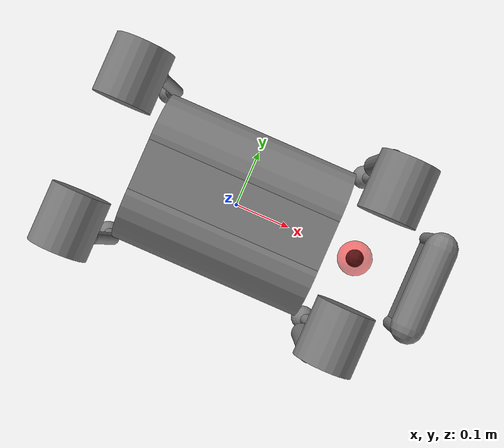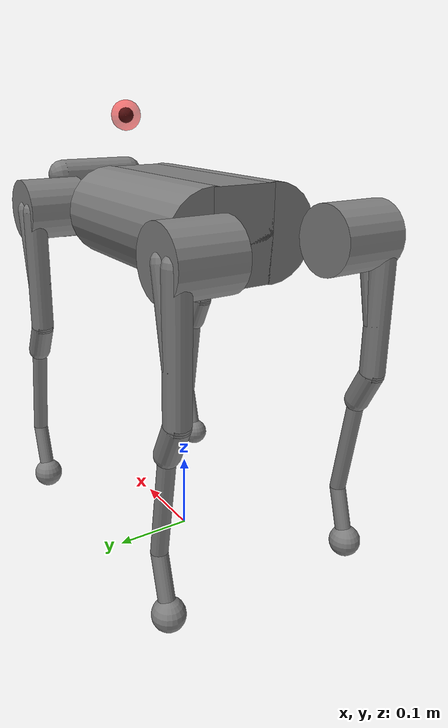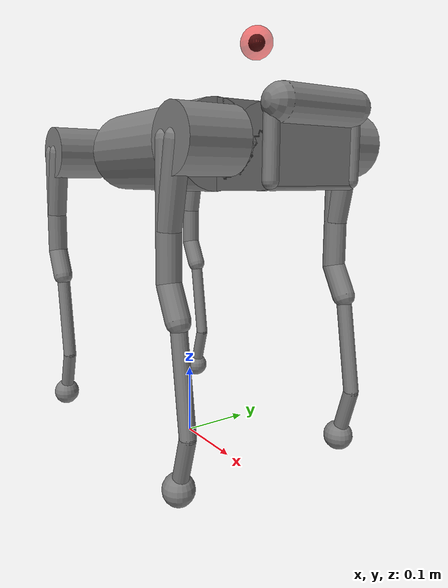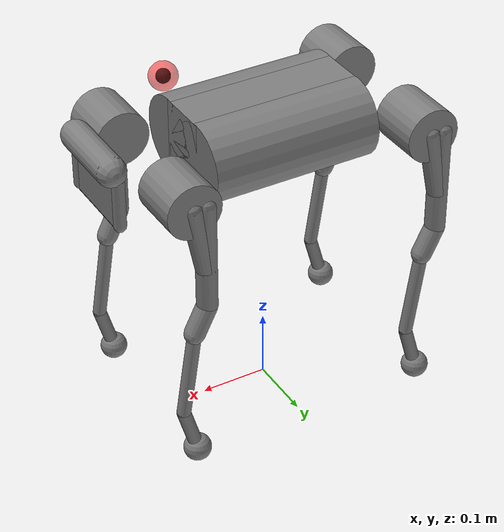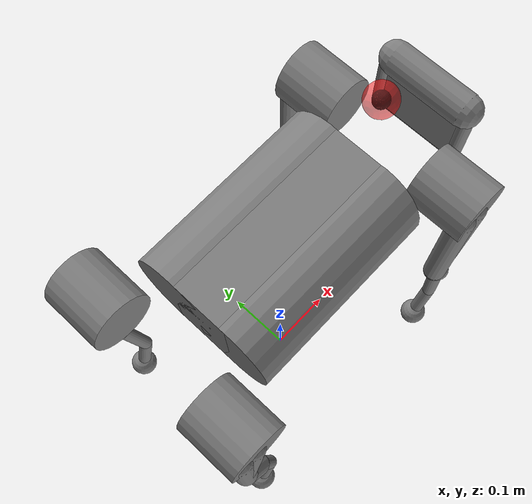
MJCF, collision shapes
<mujoco model="a1">
  <compiler angle="radian" meshdir="assets" autolimits="true"/>

  <option cone="elliptic" impratio="100"/>

  <default>
    <default class="a1">
      <geom friction="0.6" margin="0.001"/>
      <joint axis="0 1 0" damping="2" armature="0.01" frictionloss="0.2"/>
      <position kp="20" kv="0.5" forcerange="-33.5 33.5"/>
      <default class="abduction">
        <joint axis="1 0 0" damping="1" range="-0.802851 0.802851"/>
        <position ctrlrange="-0.802851 0.802851"/>
      </default>
      <default class="hip">
        <joint range="-1.0472 4.18879"/>
        <position ctrlrange="-1.0472 4.18879"/>
      </default>
      <default class="knee">
        <joint range="-2.69653 -0.916298"/>
        <position ctrlrange="-2.69653 -0.916298"/>
      </default>
      <default class="visual">
        <geom type="mesh" contype="0" conaffinity="0" group="2" material="dark"/>
      </default>
      <default class="collision">
        <geom group="3" type="capsule"/>
        <default class="hip_left">
          <geom size="0.04 0.04" quat="1 1 0 0" type="cylinder" pos="0 0.055 0"/>
        </default>
        <default class="hip_right">
          <geom size="0.04 0.04" quat="1 1 0 0" type="cylinder" pos="0 -0.055 0"/>
        </default>
        <default class="thigh1">
          <geom size="0.015" fromto="-0.02 0 0 -0.02 0 -0.16"/>
        </default>
        <default class="thigh2">
          <geom size="0.015" fromto="0 0 0 -0.02 0 -0.1"/>
        </default>
        <default class="thigh3">
          <geom size="0.015" fromto="-0.02 0 -0.16 0 0 -0.2"/>
        </default>
        <default class="calf1">
          <geom size="0.01" fromto="0 0 0 0.02 0 -0.13"/>
        </default>
        <default class="calf2">
          <geom size="0.01" fromto="0.02 0 -0.13 0 0 -0.2"/>
        </default>
        <default class="foot">
          <geom type="sphere" size="0.02" pos="0 0 -0.2" priority="1" solimp="0.015 1 0.02" condim="6"
            friction="0.8 0.02 0.01"/>
        </default>
      </default>
    </default>
  </default>

  <asset>
    <material name="dark" specular="0" shininess="0.25" rgba="0.2 0.2 0.2 1"/>
    <material name="carbonfibre" specular="0" shininess="0.25" rgba="0.2 0.2 0.2 1"/>

    <mesh class="a1" file="calf.obj"/>
    <mesh class="a1" file="hip.obj"/>
    <mesh class="a1" file="thigh.obj"/>
    <mesh class="a1" file="thigh_mirror.obj"/>
    <mesh class="a1" file="trunk.obj"/>
  </asset>

  <worldbody>
    <light name="spotlight" mode="targetbodycom" target="trunk" pos="0 -1 2"/>
    <body name="trunk" pos="0 0 0.43" childclass="a1">
      <camera name="tracking" pos="0.846 -1.3 0.316" xyaxes="0.866 0.500 0.000 -0.171 0.296 0.940" mode="trackcom"/>
      <site name="head" pos="0.3 0 0" rgba="1 0 0 1" size="0.02" group="5"/>
      <site name="imu" pos="0 0 0" group="5"/>
      <freejoint name="floating_base_joint"/>
      <inertial mass="4.713" pos="0 0.0041 -0.0005"
        fullinertia="0.0158533 0.0377999 0.0456542 -3.66e-05 -6.11e-05 -2.75e-05"/>
      <geom class="visual" mesh="trunk" material="carbonfibre"/>
      <geom name="trunk_collision" class="collision" size="0.125 0.04 0.057" type="box"/>
      <geom name="trunk_collision_right" class="collision" quat="1 0 1 0" pos="0 -0.04 0" size="0.058 0.125" type="cylinder"/>
      <geom name="trunk_collision_left" class="collision" quat="1 0 1 0" pos="0 +0.04 0" size="0.058 0.125" type="cylinder"/>
      <geom name="head_collision_bar" class="collision" pos="0.25 0 0" size="0.005 0.06 0.05" type="box"/>
      <geom name="head_collision_left" class="collision" pos="0.25 0.06 -0.01" size="0.009 0.035"/>
      <geom name="head_collision_right" class="collision" pos="0.25 -0.06 -0.01" size="0.009 0.035"/>
      <geom name="chin_collision" class="collision" pos="0.25 0 -0.05" size="0.005 0.06" quat="1 1 0 0"/>
      <geom name="head_collision" class="collision" pos="0.255 0 0.0355" size="0.021 0.052" quat="1 1 0 0"/>

      <!-- Lidar body on top of trunk -->
      <body name="lidar_body" pos="0.15 0 0.12" euler="0 1.5708 0">
        <site name="lidar_origin" pos="0 0 0" size="0.02" type="sphere" rgba="1 0 0 0.5" />
        <!-- 40 evenly spaced lidar beams covering full 360 degrees (9 degrees apart) -->
        <site name="lidar_beam_0" pos="0 0 0" euler="0.000000 0 0" size="0.01" />
        <site name="lidar_beam_1" pos="0 0 0" euler="0.157080 0 0" size="0.01" />
        <site name="lidar_beam_2" pos="0 0 0" euler="0.314159 0 0" size="0.01" />
        <site name="lidar_beam_3" pos="0 0 0" euler="0.471239 0 0" size="0.01" />
        <site name="lidar_beam_4" pos="0 0 0" euler="0.628319 0 0" size="0.01" />
        <site name="lidar_beam_5" pos="0 0 0" euler="0.785398 0 0" size="0.01" />
        <site name="lidar_beam_6" pos="0 0 0" euler="0.942478 0 0" size="0.01" />
        <site name="lidar_beam_7" pos="0 0 0" euler="1.099557 0 0" size="0.01" />
        <site name="lidar_beam_8" pos="0 0 0" euler="1.256637 0 0" size="0.01" />
        <site name="lidar_beam_9" pos="0 0 0" euler="1.413717 0 0" size="0.01" />
        <site name="lidar_beam_10" pos="0 0 0" euler="1.570796 0 0" size="0.01" />
        <site name="lidar_beam_11" pos="0 0 0" euler="1.727876 0 0" size="0.01" />
        <site name="lidar_beam_12" pos="0 0 0" euler="1.884956 0 0" size="0.01" />
        <site name="lidar_beam_13" pos="0 0 0" euler="2.042035 0 0" size="0.01" />
        <site name="lidar_beam_14" pos="0 0 0" euler="2.199115 0 0" size="0.01" />
        <site name="lidar_beam_15" pos="0 0 0" euler="2.356194 0 0" size="0.01" />
        <site name="lidar_beam_16" pos="0 0 0" euler="2.513274 0 0" size="0.01" />
        <site name="lidar_beam_17" pos="0 0 0" euler="2.670354 0 0" size="0.01" />
        <site name="lidar_beam_18" pos="0 0 0" euler="2.827433 0 0" size="0.01" />
        <site name="lidar_beam_19" pos="0 0 0" euler="2.984513 0 0" size="0.01" />
        <site name="lidar_beam_20" pos="0 0 0" euler="3.141593 0 0" size="0.01" />
        <site name="lidar_beam_21" pos="0 0 0" euler="3.298672 0 0" size="0.01" />
        <site name="lidar_beam_22" pos="0 0 0" euler="3.455752 0 0" size="0.01" />
        <site name="lidar_beam_23" pos="0 0 0" euler="3.612832 0 0" size="0.01" />
        <site name="lidar_beam_24" pos="0 0 0" euler="3.769911 0 0" size="0.01" />
        <site name="lidar_beam_25" pos="0 0 0" euler="3.926991 0 0" size="0.01" />
        <site name="lidar_beam_26" pos="0 0 0" euler="4.084070 0 0" size="0.01" />
        <site name="lidar_beam_27" pos="0 0 0" euler="4.241150 0 0" size="0.01" />
        <site name="lidar_beam_28" pos="0 0 0" euler="4.398230 0 0" size="0.01" />
        <site name="lidar_beam_29" pos="0 0 0" euler="4.555309 0 0" size="0.01" />
        <site name="lidar_beam_30" pos="0 0 0" euler="4.712389 0 0" size="0.01" />
        <site name="lidar_beam_31" pos="0 0 0" euler="4.869469 0 0" size="0.01" />
        <site name="lidar_beam_32" pos="0 0 0" euler="5.026548 0 0" size="0.01" />
        <site name="lidar_beam_33" pos="0 0 0" euler="5.183628 0 0" size="0.01" />
        <site name="lidar_beam_34" pos="0 0 0" euler="5.340708 0 0" size="0.01" />
        <site name="lidar_beam_35" pos="0 0 0" euler="5.497787 0 0" size="0.01" />
        <site name="lidar_beam_36" pos="0 0 0" euler="5.654867 0 0" size="0.01" />
        <site name="lidar_beam_37" pos="0 0 0" euler="5.811946 0 0" size="0.01" />
        <site name="lidar_beam_38" pos="0 0 0" euler="5.969026 0 0" size="0.01" />
        <site name="lidar_beam_39" pos="0 0 0" euler="6.126106 0 0" size="0.01" />
      </body>

      <body name="FR_hip" pos="0.183 -0.047 0">
        <inertial mass="0.696" pos="-0.003311 -0.000635 3.1e-05" quat="0.507528 0.506268 0.491507 0.494499"
          diaginertia="0.000807752 0.00055293 0.000468983"/>
        <joint class="abduction" name="FR_hip_joint"/>
        <geom class="visual" mesh="hip" quat="0 1 0 0"/>
        <geom name="FR_hip_collision" class="hip_right"/>
        <body name="FR_thigh" pos="0 -0.08505 0">
          <inertial mass="1.013" pos="-0.003237 0.022327 -0.027326" quat="0.999125 -0.00256393 -0.0409531 -0.00806091"
            diaginertia="0.00555739 0.00513936 0.00133944"/>
          <joint class="hip" name="FR_thigh_joint"/>
          <geom class="visual" mesh="thigh_mirror"/>
          <geom name="FR_thigh_collision1" class="thigh1"/>
          <geom name="FR_thigh_collision2" class="thigh2"/>
          <geom name="FR_thigh_collision3" class="thigh3"/>
          <body name="FR_calf" pos="0 0 -0.2">
            <inertial mass="0.226" pos="0.00472659 0 -0.131975" quat="0.706886 0.017653 0.017653 0.706886"
              diaginertia="0.00340344 0.00339393 3.54834e-05"/>
            <joint class="knee" name="FR_calf_joint"/>
            <geom class="visual" mesh="calf"/>
            <geom name="FR_calf_collision1" class="calf1"/>
            <geom name="FR_calf_collision2" class="calf2"/>
            <geom name="FR_foot_collision" class="foot"/>
            <site name="FR" pos="0 0 -0.2" type="sphere" size="0.02" group="5"/>
          </body>
        </body>
      </body>
      <body name="FL_hip" pos="0.183 0.047 0">
        <inertial mass="0.696" pos="-0.003311 0.000635 3.1e-05" quat="0.494499 0.491507 0.506268 0.507528"
          diaginertia="0.000807752 0.00055293 0.000468983"/>
        <joint class="abduction" name="FL_hip_joint"/>
        <geom class="visual" mesh="hip"/>
        <geom name="FL_hip_collision" class="hip_left"/>
        <body name="FL_thigh" pos="0 0.08505 0">
          <inertial mass="1.013" pos="-0.003237 -0.022327 -0.027326" quat="0.999125 0.00256393 -0.0409531 0.00806091"
            diaginertia="0.00555739 0.00513936 0.00133944"/>
          <joint class="hip" name="FL_thigh_joint"/>
          <geom class="visual" mesh="thigh"/>
          <geom name="FL_thigh_collision1" class="thigh1"/>
          <geom name="FL_thigh_collision2" class="thigh2"/>
          <geom name="FL_thigh_collision3" class="thigh3"/>
          <body name="FL_calf" pos="0 0 -0.2">
            <inertial mass="0.226" pos="0.00472659 0 -0.131975" quat="0.706886 0.017653 0.017653 0.706886"
              diaginertia="0.00340344 0.00339393 3.54834e-05"/>
            <joint class="knee" name="FL_calf_joint"/>
            <geom class="visual" mesh="calf"/>
            <geom name="FL_calf_collision1" class="calf1"/>
            <geom name="FL_calf_collision2" class="calf2"/>
            <geom name="FL_foot_collision" class="foot"/>
            <site name="FL" pos="0 0 -0.2" type="sphere" size="0.02" group="5"/>
          </body>
        </body>
      </body>
      <body name="RR_hip" pos="-0.183 -0.047 0">
        <inertial mass="0.696" pos="0.003311 -0.000635 3.1e-05" quat="0.491507 0.494499 0.507528 0.506268"
          diaginertia="0.000807752 0.00055293 0.000468983"/>
        <joint class="abduction" name="RR_hip_joint"/>
        <geom class="visual" quat="0 0 0 -1" mesh="hip"/>
        <geom name="RR_hip_collision" class="hip_right"/>
        <body name="RR_thigh" pos="0 -0.08505 0">
          <inertial mass="1.013" pos="-0.003237 0.022327 -0.027326" quat="0.999125 -0.00256393 -0.0409531 -0.00806091"
            diaginertia="0.00555739 0.00513936 0.00133944"/>
          <joint class="hip" name="RR_thigh_joint"/>
          <geom class="visual" mesh="thigh_mirror"/>
          <geom name="RR_thigh_collision1" class="thigh1"/>
          <geom name="RR_thigh_collision2" class="thigh2"/>
          <geom name="RR_thigh_collision3" class="thigh3"/>
          <body name="RR_calf" pos="0 0 -0.2">
            <inertial mass="0.226" pos="0.00472659 0 -0.131975" quat="0.706886 0.017653 0.017653 0.706886"
              diaginertia="0.00340344 0.00339393 3.54834e-05"/>
            <joint class="knee" name="RR_calf_joint"/>
            <geom class="visual" mesh="calf"/>
            <geom name="RR_calf_collision1" class="calf1"/>
            <geom name="RR_calf_collision2" class="calf2"/>
            <geom name="RR_foot_collision" class="foot"/>
            <site name="RR" pos="0 0 -0.2" type="sphere" size="0.02" group="5"/>
          </body>
        </body>
      </body>
      <body name="RL_hip" pos="-0.183 0.047 0">
        <inertial mass="0.696" pos="0.003311 0.000635 3.1e-05" quat="0.506268 0.507528 0.494499 0.491507"
          diaginertia="0.000807752 0.00055293 0.000468983"/>
        <joint class="abduction" name="RL_hip_joint"/>
        <geom class="visual" quat="0 0 1 0" mesh="hip"/>
        <geom name="RL_hip_collision" class="hip_left"/>
        <body name="RL_thigh" pos="0 0.08505 0">
          <inertial mass="1.013" pos="-0.003237 -0.022327 -0.027326" quat="0.999125 0.00256393 -0.0409531 0.00806091"
            diaginertia="0.00555739 0.00513936 0.00133944"/>
          <joint class="hip" name="RL_thigh_joint"/>
          <geom class="visual" mesh="thigh"/>
          <geom name="RL_thigh_collision1" class="thigh1"/>
          <geom name="RL_thigh_collision2" class="thigh2"/>
          <geom name="RL_thigh_collision3" class="thigh3"/>
          <body name="RL_calf" pos="0 0 -0.2">
            <inertial mass="0.226" pos="0.00472659 0 -0.131975" quat="0.706886 0.017653 0.017653 0.706886"
              diaginertia="0.00340344 0.00339393 3.54834e-05"/>
            <joint class="knee" name="RL_calf_joint"/>
            <geom class="visual" mesh="calf"/>
            <geom name="RL_calf_collision1" class="calf1"/>
            <geom name="RL_calf_collision2" class="calf2"/>
            <geom name="RL_foot_collision" class="foot"/>
            <site name="RL" pos="0 0 -0.2" type="sphere" size="0.02" group="5"/>
          </body>
        </body>
      </body>
    </body>
  </worldbody>

  <actuator>
    <position class="abduction" name="FR_hip" joint="FR_hip_joint"/>
    <position class="hip" name="FR_thigh" joint="FR_thigh_joint"/>
    <position class="knee" name="FR_calf" joint="FR_calf_joint"/>
    <position class="abduction" name="FL_hip" joint="FL_hip_joint"/>
    <position class="hip" name="FL_thigh" joint="FL_thigh_joint"/>
    <position class="knee" name="FL_calf" joint="FL_calf_joint"/>
    <position class="abduction" name="RR_hip" joint="RR_hip_joint"/>
    <position class="hip" name="RR_thigh" joint="RR_thigh_joint"/>
    <position class="knee" name="RR_calf" joint="RR_calf_joint"/>
    <position class="abduction" name="RL_hip" joint="RL_hip_joint"/>
    <position class="hip" name="RL_thigh" joint="RL_thigh_joint"/>
    <position class="knee" name="RL_calf" joint="RL_calf_joint"/>
  </actuator>

  <sensor>
    <gyro name="imu_ang_vel" site="imu"/>
    <velocimeter name="imu_lin_vel" site="imu"/>
    <accelerometer name="imu_lin_acc" site="imu"/>
    <subtreeangmom name="root_angmom" body="trunk"/>
  </sensor>

  <keyframe>
    <key name="home" qpos="0 0 0.2686439873 1 0 0 0 0 0.9 -1.8 0 0.9 -1.8 0 0.9 -1.8 0 0.9 -1.8"
      ctrl="0 0.9 -1.8 0 0.9 -1.8 0 0.9 -1.8 0 0.9 -1.8"/>
  </keyframe>
</mujoco>
